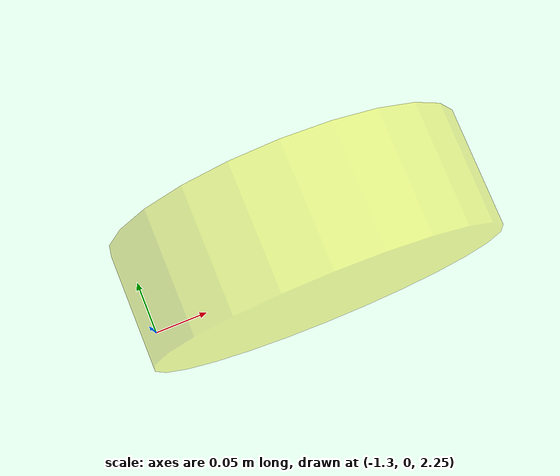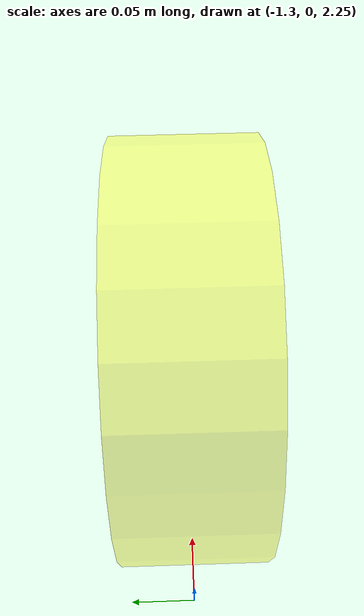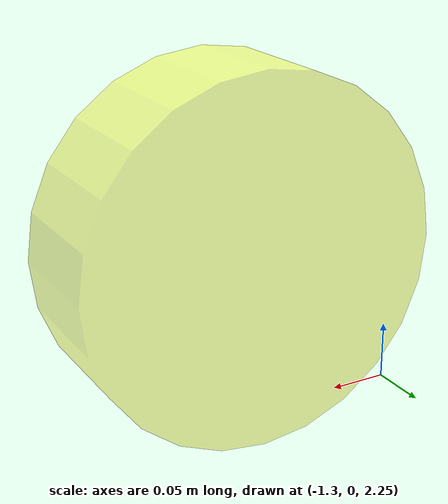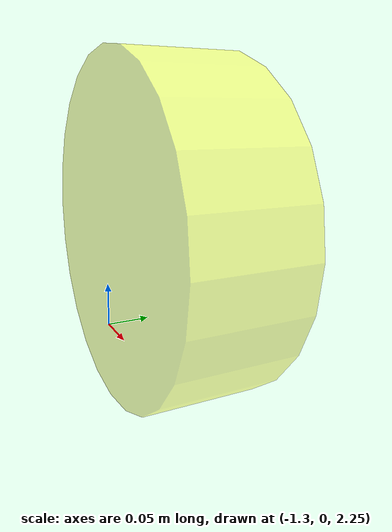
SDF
<?xml version="1.0" ?>
<sdf version="1.5">

  <model name="light_yellow">
    <static>true</static>

      <link name='Yellow_light_source'>
      <pose>-1.15 0 2.4 1.57 0 0</pose>

      <light name='yellow' type='spot'>
        <pose>0 0 0.0 1.57 0 0</pose>
        <attenuation>
          <range>30</range>
          <linear>0.05</linear>
        </attenuation>
        <diffuse>0.5 1 1 1</diffuse>
        <specular>1 1 1 1</specular>
        <spot>
          <inner_angle>0.3</inner_angle>
          <outer_angle>0.35</outer_angle>
          <falloff>1</falloff>
        </spot>
        <direction>0 0 -1</direction>
      </light>

      <visual name='yellow'>
        <geometry>
          <cylinder>
            <radius>0.15</radius>
            <length>0.1</length>
          </cylinder>
          <sphere>
            <radius>0.4</radius>
          </sphere>
        </geometry>
        <transparency>0.6</transparency>

        <material>
          <ambient>1 1 0 1</ambient>
          <diffuse>1 1 0 1</diffuse>
          <specular>1 1 1 1</specular>
          <emissive>1 1 0 1 </emissive>
        </material>

      </visual>
      </link>

    <plugin name='yellow_light_controller' filename='libLedPlugin.so'>
      <enable>true</enable>

      <light>
        <id>Yellow_light_source/yellow</id>
        <duration>2</duration>
        <interval>8</interval>
        <enable>true</enable>
      </light>

      </plugin>
  </model>

</sdf>
